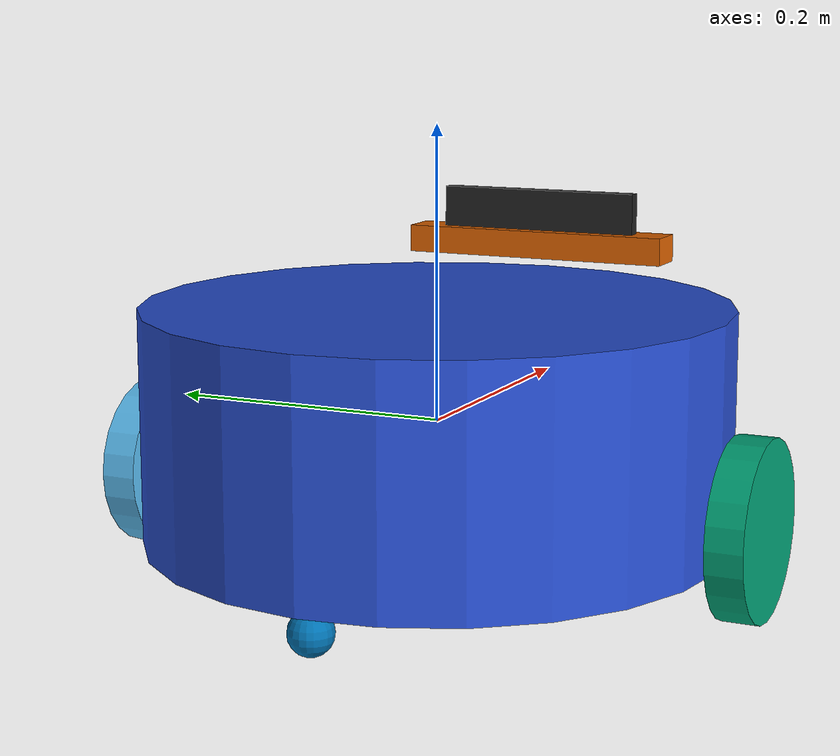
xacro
<?xml version="1.0" ?>
<robot xmlns:xacro="http://www.ros.org/wiki/xacro"
    xmlns:sensor="http://playerstage.sourceforge.net/gazebo/xmlschema/#sensor"
        xmlns:controller="http://playerstage.sourceforge.net/gazebo/xmlschema/#controller"
        xmlns:interface="http://playerstage.sourceforge.net/gazebo/xmlschema/#interface"
    name="robot1">
	<xacro:include filename="$(find mbot_description)/urdf/sensors/stereocamera.xacro"/>

    <xacro:macro name="default_inertial" params="mass">
               <inertial>
                       <mass value="${mass}" />
                       <inertia ixx="1.0" ixy="0.0" ixz="0.0"
                                iyy="1.0" iyz="0.0"
                                izz="1.0" />
               </inertial>
    </xacro:macro>

    <link name="base_link">
        <visual>
            <origin xyz=" 0 0 0" rpy="0 0 0" />
            <geometry>
                <cylinder length="0.16" radius="0.20"/>
            </geometry>
        </visual>
        <collision>
            <origin xyz="0 0 0" rpy="0 0 0" />
            <geometry>
                <cylinder length="0.16" radius="0.20"/>
            </geometry>
        </collision>
	 <xacro:default_inertial mass="25.0"/>
    </link>

    <gazebo reference="base_link">
    	<material>Gazebo/Blue</material>
	<turnGravityOff>false</turnGravityOff>
    </gazebo>

    <xacro:macro name="side_wheel" params="LR sym1">
        <joint name="${LR}_wheel_joint" type="continuous">
            <origin xyz="0 ${sym1} -0.05" rpy="0 0 0"/>
            <parent link="base_link"/>
            <child link="${LR}_wheel_link"/>
            <axis xyz="0 1 0"/>
        </joint>

        <link name="${LR}_wheel_link">
            <visual>
                <origin xyz="0 0 0" rpy="1.5707 0 0" />
                <geometry>
                    <cylinder radius="0.06" length = "0.025"/>
                </geometry>
            </visual>
            <collision>
            <origin xyz="0 0 0" rpy="1.5707 0 0" />
            <geometry>
                    <cylinder length="0.025" radius="0.06"/>
            </geometry>
            </collision>
            <xacro:default_inertial mass="5"/>
        </link>

    </xacro:macro>

    <xacro:macro name="auxiliary_wheel" params="LR sym1">
        <joint name="${LR}_caster_joint" type="continuous">
            <origin xyz="${sym1} 0 -0.095" rpy="0 0 0"/>
            <parent link="base_link"/>
            <child link="${LR}_caster_link"/>
            <axis xyz="0 1 0"/>
        </joint>

        <link name="${LR}_caster_link">
            <visual>
                <origin xyz="0 0 0" rpy="0 0 0"/>
                <geometry>
                    <sphere radius="0.015" />
                </geometry>
            </visual>
            <collision>
            <origin xyz="0 0 0" rpy="0 0 0"/>
            <geometry>
                    <sphere radius="0.015"/>
            </geometry>
            </collision>
            <xacro:default_inertial mass="0.5"/>
        </link>

    </xacro:macro>

<xacro:side_wheel LR="left" sym1="0.22" />
<xacro:side_wheel LR="right" sym1="-0.22" />
<xacro:auxiliary_wheel LR="front" sym1="0.18" />
<xacro:auxiliary_wheel LR="back" sym1="-0.18" />

<!--yun tai-->
<link name="yun_link">
    <visual>
        <origin xyz="0 0 0" rpy="0 0 0" />
        <geometry >
            <box size="0.03 0.2 0.02" />
        </geometry>
    </visual>
    <collision>
        <origin xyz="0 0 0" rpy="0 0 0" />
        <geometry >
            <box size="0.03 0.2 0.02" />
        </geometry>
    </collision>
    <xacro:default_inertial mass="0.1"/>
</link>
<joint name="yun_joint" type="revolute">
    <parent link="base_link"/>
    <child link="yun_link"/>
    <origin xyz="0.18 0 0.10" rpy="0 0 0" />
    <axis xyz="0 1 0" />
    <limit lower="-1.745" upper="2.356" effort="10"
	   velocity="1.0" />
    <joint_properties damping="0.0" friction="0.0"/>
</joint>

<!--camera-->
<joint name="camera_joint" type="fixed">
    <origin xyz="0 0 0.02" rpy="0 0 0"/>
    <parent link="yun_link"/>
    <child link="camera_link"/>
</joint>
<xacro:usb2_camera prefix="camera"/>

<!-- Ros_Control-->>
<xacro:macro name="joint_control" params="TN JN AN">
    <transmission name="${TN}">
        <type>transmission_interface/SimpleTransmission</type>
        <joint name="${JN}">
            <hardwareInterface>EffortJointInterface</hardwareInterface>
        </joint>
        <actuator name="${AN}">
            <hardwareInterface>EffortJointInterface</hardwareInterface>
            <mechanicalReduction>1</mechanicalReduction>
        </actuator>
    </transmission>
</xacro:macro>

<xacro:joint_control TN="trans_left" JN="left_wheel_joint" AN="motor_left" />
<xacro:joint_control TN="trans_right" JN="right_wheel_joint" AN="motor_right" />
<xacro:joint_control TN="trans_yun" JN="yun_joint" AN="motor_yun" />

<!-- controller -->
<gazebo>
    <plugin name="differential_drive_controller" filename="libgazebo_ros_diff_drive.so">
        <rosDebugLevel>Debug</rosDebugLevel>
        <publishWheelTF>true</publishWheelTF>
        <robotNamespace>/robot</robotNamespace>
        <publishTf>1</publishTf>
        <publishWheelJointState>true</publishWheelJointState>
        <alwaysOn>true</alwaysOn>
        <updateRate>100.0</updateRate>
        <legacyMode>true</legacyMode>
        <leftJoint>left_wheel_joint</leftJoint>
        <rightJoint>right_wheel_joint</rightJoint>
        <wheelSeparation>0.44</wheelSeparation>
        <wheelDiameter>0.12</wheelDiameter>
        <broadcastTF>1</broadcastTF>
        <wheelTorque>30</wheelTorque>
        <wheelAcceleration>1.8</wheelAcceleration>
        <commandTopic>cmd_vel</commandTopic>
        <odometryFrame>odom</odometryFrame>
        <odometryTopic>odom</odometryTopic>
        <robotBaseFrame>base_link</robotBaseFrame>
    </plugin>
</gazebo>

<gazebo>
    <plugin name="gazebo_ros_control" filename="libgazebo_ros_control.so">
        <robotNamespace>/robot</robotNamespace>
        <controlPeriod>0.01</controlPeriod>
        <robotSimType>gazebo_ros_control/DefaultRobotHWSim</robotSimType>
    </plugin>
</gazebo>

</robot>

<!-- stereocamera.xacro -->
<robot xmlns:xacro="http://www.ros.org/wiki/xacro" name="camera">

    <xacro:macro name="usb2_camera" params="prefix:=camera">
        <!-- Create laser reference frame -->
        <link name="${prefix}_link">
            <inertial>
                <mass value="0.1" />
                <origin xyz="0 0 0" />
                <inertia ixx="0.01" ixy="0.0" ixz="0.0"
                         iyy="0.01" iyz="0.0"
                         izz="0.01" />
            </inertial>

            <visual>
                <origin xyz=" 0 0 0 " rpy="0 0 0" />
                <geometry>
                    <box size="0.01 0.15 0.04" />
                </geometry>
                <material name="black"/>
            </visual>

            <collision>
                <origin xyz="0.0 0.0 0.0" rpy="0 0 0" />
                <geometry>
                    <box size="0.01 0.15 0.04" />
                </geometry>
            </collision>
        </link>
        <gazebo reference="${prefix}_link">
            <material>Gazebo/Black</material>
        </gazebo>

        <gazebo reference="${prefix}_link">
            <sensor type="multicamera" name="stereocamera">
            <always_on>true</always_on>
            <update_rate>30</update_rate>
            <visualize>true</visualize>
            <camera name="left">
                <pose>0 0.1 0 0 0 0</pose>
                <horizontal_fov>1.047</horizontal_fov>
                <image>
                    <width>640</width>
                    <height>480</height>
                    <format>R8G8B8</format>
                </image>
                <clip>
                    <near>0.02</near>
                    <far>300</far>
                </clip>
                <noise>
                    <type>gaussian</type>
                    <mean>0.0</mean>
                    <stddev>0.007</stddev>
                </noise>
            </camera>
            <camera name="right">
                <pose>0 -0.1 0 0 0 0</pose>
                <horizontal_fov>1.047</horizontal_fov>
                <image>
                    <width>640</width>
                    <height>480</height>
                    <format>R8G8B8</format>
                </image>
                <clip>
                    <near>0.02</near>
                    <far>300</far>
                </clip>
                <noise>
                    <type>gaussian</type>
                    <mean>0.0</mean>
                    <stddev>0.007</stddev>
                </noise>
            </camera>
            <plugin name="stereo_camera_controller" filename="libgazebo_ros_multicamera.so">
                <cameraName>stereocamera</cameraName>
                <alwaysOn>true</alwaysOn>
                <updateRate>30.0</updateRate>
                <cameraName>/stereocamera</cameraName>
                <imageTopicName>image_raw</imageTopicName>
                <cameraInfoTopicName>camera_info</cameraInfoTopicName>
                <frameName>camera_link_optical</frameName>
                <hackBaseline>0.07</hackBaseline>
                <distortion_k1>0.0</distortion_k1>
                <distortion_k2>0.0</distortion_k2>
                <distortion_k3>0.0</distortion_k3>
                <distortion_t1>0.0</distortion_t1>
                <distortion_t2>0.0</distortion_t2>
            </plugin>
            </sensor>
        </gazebo>

    </xacro:macro>
</robot>
